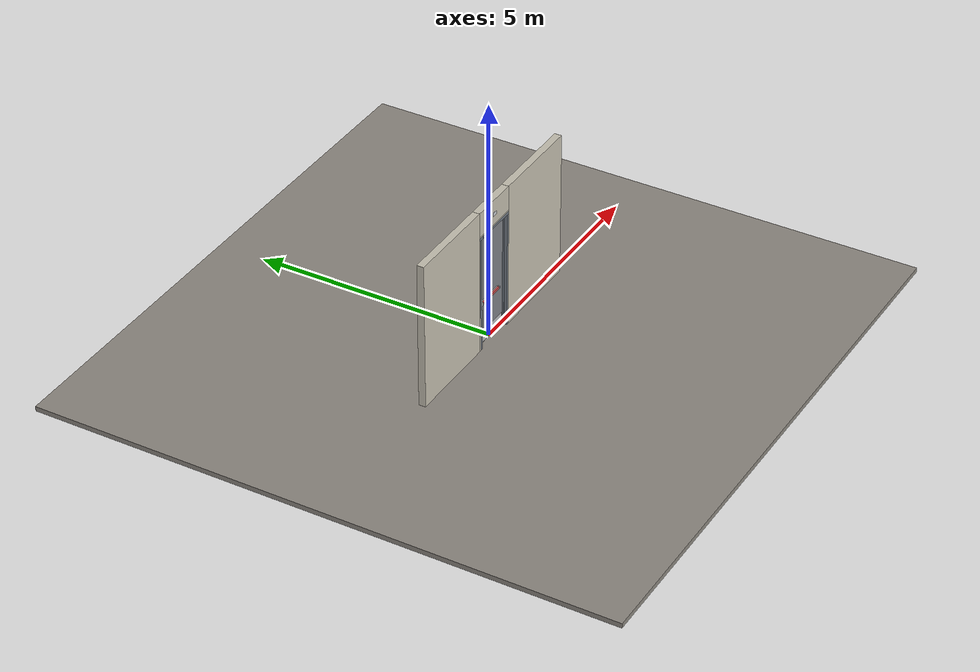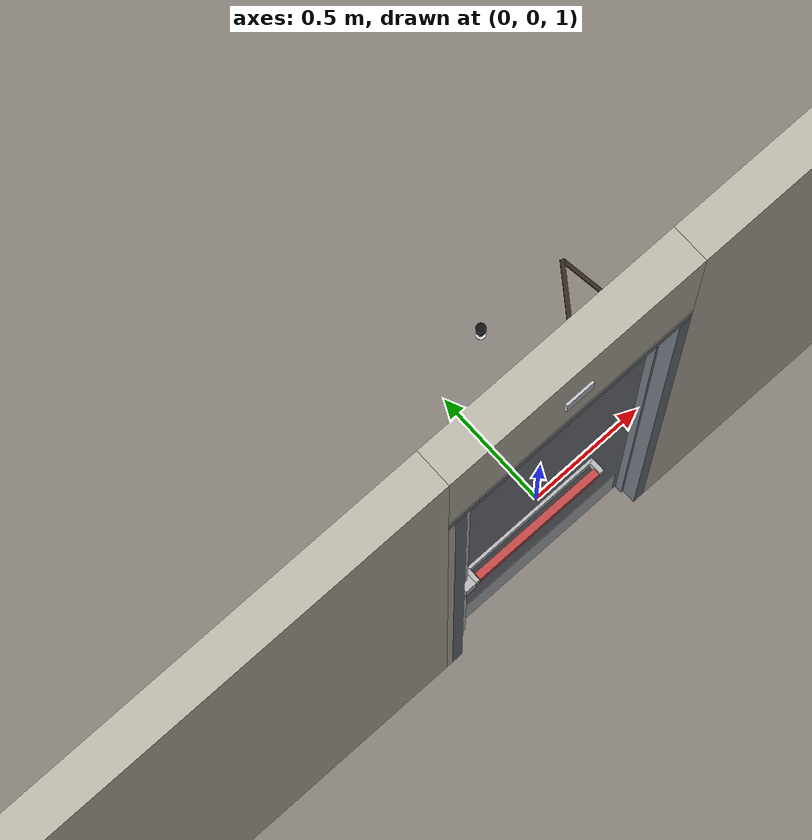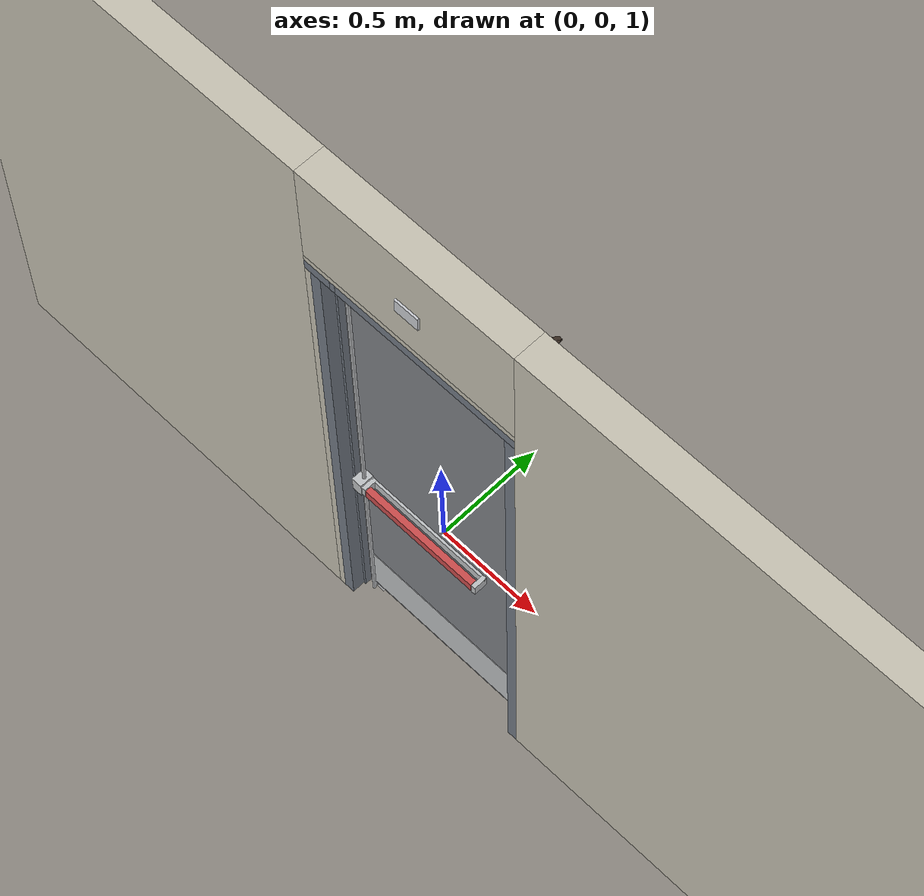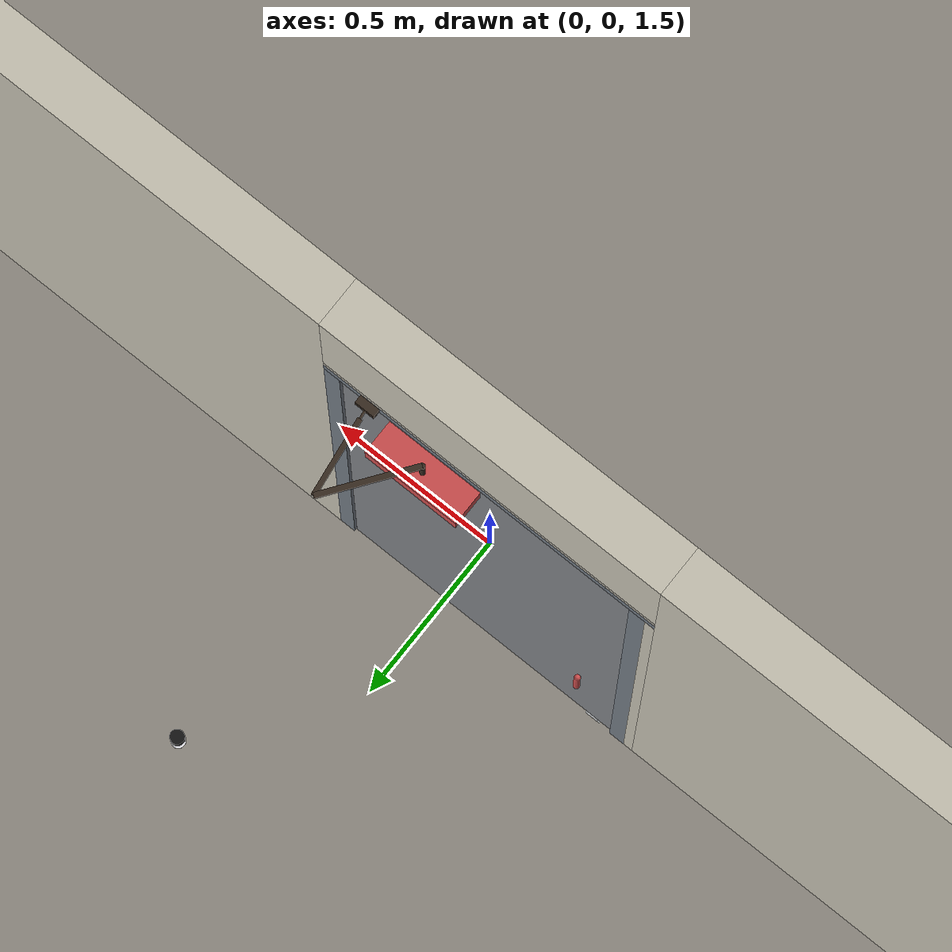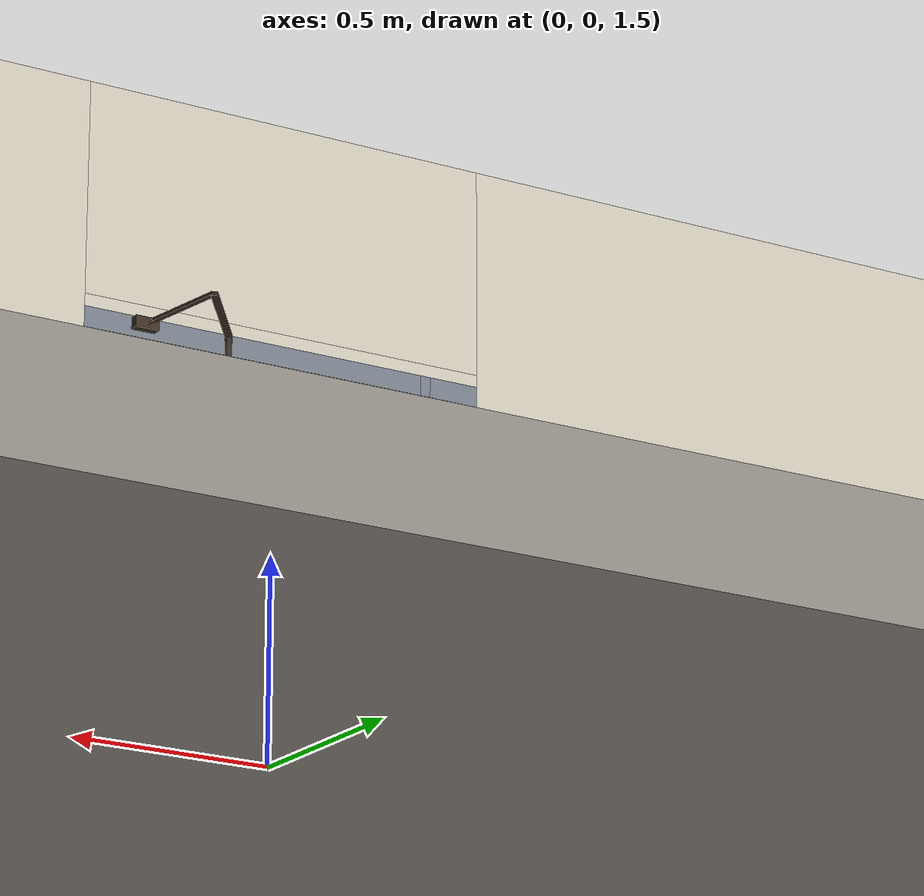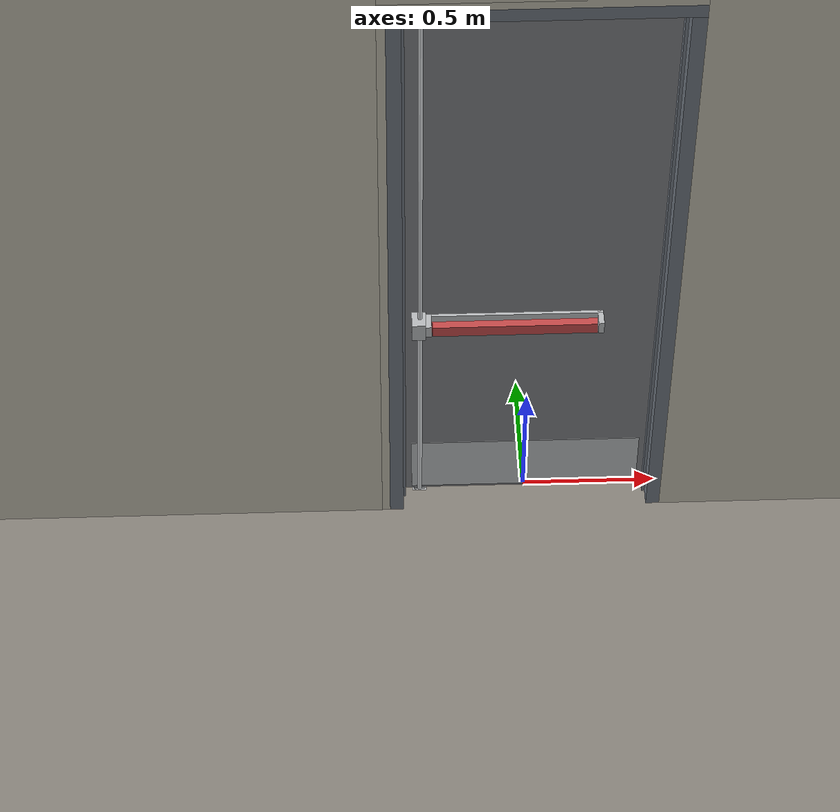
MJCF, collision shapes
<?xml version="1.0" ?>
<mujoco model="db0256_swing_single_full">
  <compiler angle="radian" meshdir="../../hardware" texturedir="../../textures" autolimits="true" inertiafromgeom="false"/>
  <option timestep="0.002" integrator="implicitfast" cone="elliptic" impratio="10" noslip_iterations="3">
    <flag multiccd="enable"/>
  </option>
  <size memory="16M"/>
  <default>
    <geom condim="4" solref="0.005 1" solimp="0.95 0.99 0.001"/>
    <joint solreflimit="0.005 1" solimplimit="0.95 0.99 0.001"/>
    <tendon solreflimit="0.005 1"/>
    <equality solref="0.002 1"/>
  </default>
  <visual>
    <headlight ambient="0.4 0.4 0.4" diffuse="0.7 0.7 0.7" specular="0.2 0.2 0.2"/>
    <quality shadowsize="4096"/>
    <map znear="0.01" zfar="60"/>
  </visual>
  <asset>
    <mesh name="closer_body_fdc4667657" file="closer_body_fdc4667657.obj"/>
    <mesh name="exit_sign_a6449bfa2c" file="exit_sign_a6449bfa2c.obj"/>
    <mesh name="hinge_e22b26c0c1" file="hinge_e22b26c0c1.obj"/>
    <mesh name="hinge_jamb_e1d088f8dc" file="hinge_jamb_e1d088f8dc.obj"/>
    <mesh name="pull_1e5d69a91a" file="pull_1e5d69a91a.obj"/>
    <mesh name="touchbar_pad_2729a067b4" file="touchbar_pad_2729a067b4.obj"/>
    <material name="mat_floor" rgba="0.55 0.53 0.5 1" specular="0.2" shininess="0.15" reflectance="0"/>
    <material name="mat_wall" rgba="0.78 0.76 0.7 1" specular="0.2" shininess="0.1" reflectance="0"/>
    <material name="mat_leaf" rgba="0.5 0.51 0.53 1" specular="0.23" shininess="0.53" reflectance="0.02"/>
    <material name="mat_hinge" rgba="0.65 0.66 0.68 1" specular="0.74" shininess="0.5" reflectance="0.36"/>
    <material name="mat_op_stainless" rgba="0.75 0.76 0.77 1" specular="0.8" shininess="0.65" reflectance="0.4"/>
    <material name="mat_bolt" rgba="0.75 0.76 0.77 1" specular="0.8" shininess="0.65" reflectance="0.4"/>
    <material name="mat_frame" rgba="0.45 0.48 0.52 1" specular="0.32" shininess="0.6" reflectance="0.08"/>
    <material name="mat_seal" rgba="0.1 0.1 0.1 1" specular="0.2" shininess="0.1" reflectance="0"/>
    <material name="mat_closer" rgba="0.22 0.17 0.13 1" specular="0.8" shininess="0.6" reflectance="0.4"/>
    <material name="mat_kick" rgba="0.75 0.76 0.77 1" specular="0.8" shininess="0.65" reflectance="0.4"/>
    <material name="mat_exit_sign" rgba="0.85 0.1 0.1 1" specular="0.2" shininess="0.6" reflectance="0"/>
    <material name="mat_sign_bracket" rgba="0.8 0.81 0.83 1" specular="0.8" shininess="0.6" reflectance="0.4"/>
    <material name="mat_bumper_stop" rgba="0.08 0.08 0.08 1" specular="0.2" shininess="0.1" reflectance="0"/>
    <material name="mat_stop_base" rgba="0.9 0.9 0.92 1" specular="0.8" shininess="0.9" reflectance="0.4"/>
    <texture name="skybox" type="skybox" builtin="gradient" rgb1="0.6 0.7 0.85" rgb2="0.9 0.92 0.95" width="256" height="256"/>
  </asset>
  <worldbody>
    <light name="sun" pos="1.5 -2.5 4" dir="-0.3 0.5 -0.8" directional="true" diffuse="0.8 0.8 0.8" specular="0.3 0.3 0.3" castshadow="true"/>
    <light name="fill" pos="-1.5 2.5 3" dir="0.3 -0.5 -0.7" directional="true" diffuse="0.35 0.35 0.4" castshadow="false"/>
    <camera name="robot_view" pos="0 -2.966312 2.043887" xyaxes="1 0 0 0 0.26963 0.962964" fovy="52"/>
    <camera name="far_view" pos="0 2.879313 2.043887" xyaxes="-1 0 0 0 -0.26963 0.962964" fovy="52"/>
    <camera name="iso" pos="-2.221337 -2.498663 2.511538" xyaxes="0.741536 -0.670913 0 0.242917 0.268487 0.932151" fovy="46"/>
    <camera name="detail_handle" pos="-0.1865 -0.718 1.245" xyaxes="0.97561 0.219512 0 -0.070934 0.315262 0.94635" fovy="38"/>
    <geom name="floor" type="box" size="6 6 0.05" pos="0 0 -0.05" material="mat_floor" group="0" contype="1" conaffinity="1" friction="0.8 0.005 0.0001" density="2400"/>
    <geom name="wall_left" type="box" size="0.97975 0.0725 1.5255" pos="-1.52025 -0.0435 1.5255" material="mat_wall" group="0" contype="1" conaffinity="1" friction="0.6 0.005 0.0001" density="800"/>
    <geom name="wall_right" type="box" size="0.99475 0.0725 1.5255" pos="1.50525 -0.0435 1.5255" material="mat_wall" group="0" contype="1" conaffinity="1" friction="0.6 0.005 0.0001" density="800"/>
    <geom name="wall_header" type="box" size="0.5255 0.0725 0.26" pos="-0.015 -0.0435 2.791" material="mat_wall" group="0" contype="1" conaffinity="1" friction="0.6 0.005 0.0001" density="800"/>
    <geom name="hinge_0_jamb" type="mesh" mesh="hinge_jamb_e1d088f8dc" pos="0.4575 0.029 0.266" quat="0 0 0 1" material="mat_hinge" group="1" contype="0" conaffinity="0" density="7850"/>
    <geom name="hinge_1_jamb" type="mesh" mesh="hinge_jamb_e1d088f8dc" pos="0.4575 0.029 0.933" quat="0 0 0 1" material="mat_hinge" group="1" contype="0" conaffinity="0" density="7850"/>
    <geom name="hinge_2_jamb" type="mesh" mesh="hinge_jamb_e1d088f8dc" pos="0.4575 0.029 1.6" quat="0 0 0 1" material="mat_hinge" group="1" contype="0" conaffinity="0" density="7850"/>
    <geom name="hinge_3_jamb" type="mesh" mesh="hinge_jamb_e1d088f8dc" pos="0.4575 0.029 2.267" quat="0 0 0 1" material="mat_hinge" group="1" contype="0" conaffinity="0" density="7850"/>
    <geom name="leaf_bottom_strike_plate" type="box" size="0.0255 0.0255 0.00075" pos="-0.3965 0 0.00075" material="mat_bolt" group="0" contype="1" conaffinity="1" friction="0.6 0.005 0.0001" density="7850"/>
    <geom name="leaf_bottom_strike_p" type="box" size="0.0215 0.004 0.00575" pos="-0.3965 0.0145 0.00725" material="mat_bolt" group="0" contype="1" conaffinity="1" friction="0.6 0.005 0.0001" density="7850"/>
    <geom name="leaf_bottom_strike_n" type="box" size="0.0215 0.004 0.00575" pos="-0.3965 -0.0145 0.00725" material="mat_bolt" group="0" contype="1" conaffinity="1" friction="0.6 0.005 0.0001" density="7850"/>
    <geom name="leaf_bottom_strike_e" type="box" size="0.004 0.0215 0.00575" pos="-0.411 0 0.00725" material="mat_bolt" group="0" contype="1" conaffinity="1" friction="0.6 0.005 0.0001" density="7850"/>
    <geom name="jamb_hinge" type="box" size="0.025 0.0725 1.2255" pos="0.4855 -0.0435 1.2255" material="mat_frame" group="0" contype="1" conaffinity="1" friction="0.6 0.005 0.0001" density="300"/>
    <geom name="jamb_strike" type="box" size="0.025 0.0725 1.2255" pos="-0.4855 -0.0435 1.2255" material="mat_frame" group="0" contype="1" conaffinity="1" friction="0.6 0.005 0.0001" density="300"/>
    <geom name="stud_strike" type="box" size="0.015 0.0725 1.2255" pos="-0.5255 -0.0435 1.2255" material="mat_wall" group="0" contype="1" conaffinity="1" friction="0.6 0.005 0.0001" density="500"/>
    <geom name="jamb_head_pwall_-396_n" type="box" size="0.0135 0.0525 0.025" pos="-0.3965 -0.0635 2.476" material="mat_frame" group="0" contype="1" conaffinity="1" friction="0.6 0.005 0.0001" density="300"/>
    <geom name="jamb_head_pwall_-396_p" type="box" size="0.0135 0.009 0.025" pos="-0.3965 0.02 2.476" material="mat_frame" group="0" contype="1" conaffinity="1" friction="0.6 0.005 0.0001" density="300"/>
    <geom name="jamb_head_pback_-396" type="box" size="0.0135 0.011 0.0135" pos="-0.3965 0 2.4875" material="mat_frame" group="0" contype="1" conaffinity="1" friction="0.6 0.005 0.0001" density="300"/>
    <geom name="jamb_head_0" type="box" size="0.06525 0.0725 0.025" pos="-0.47525 -0.0435 2.476" material="mat_frame" group="0" contype="1" conaffinity="1" friction="0.6 0.005 0.0001" density="300"/>
    <geom name="jamb_head_1" type="box" size="0.44675 0.0725 0.025" pos="0.06375 -0.0435 2.476" material="mat_frame" group="0" contype="1" conaffinity="1" friction="0.6 0.005 0.0001" density="300"/>
    <geom name="head_stud" type="box" size="0.5255 0.0725 0.015" pos="-0.015 -0.0435 2.516" material="mat_wall" group="0" contype="1" conaffinity="1" friction="0.6 0.005 0.0001" density="500"/>
    <geom name="stop_hinge" type="box" size="0.0055 0.016 1.2255" pos="0.455 -0.0385 1.2255" material="mat_frame" group="0" contype="1" conaffinity="1" friction="0.6 0.005 0.0001" density="300"/>
    <geom name="stop_strike" type="box" size="0.0055 0.016 1.2255" pos="-0.455 -0.0385 1.2255" material="mat_frame" group="0" contype="1" conaffinity="1" friction="0.6 0.005 0.0001" density="300"/>
    <geom name="stop_head" type="box" size="0.4605 0.016 0.0055" pos="0 -0.0385 2.4455" material="mat_frame" group="0" contype="1" conaffinity="1" friction="0.6 0.005 0.0001" density="300"/>
    <geom name="seal_hinge" type="box" size="0.004 0.004 1.2255" pos="0.4575 -0.026 1.2255" material="mat_seal" group="1" contype="0" conaffinity="0" density="1100"/>
    <geom name="seal_strike" type="box" size="0.004 0.004 1.2255" pos="-0.4575 -0.026 1.2255" material="mat_seal" group="1" contype="0" conaffinity="0" density="1100"/>
    <geom name="seal_head" type="box" size="0.4405 0.004 0.008" pos="0 -0.026 2.439" material="mat_seal" group="1" contype="0" conaffinity="0" density="1100"/>
    <geom name="closer_bracket" type="box" size="0.03 0.012 0.014" pos="0.3605 0.041 2.481" material="mat_closer" group="1" contype="0" conaffinity="0" density="2700"/>
    <geom name="exit_sign" type="mesh" mesh="exit_sign_a6449bfa2c" pos="0 -0.15 2.751" material="mat_exit_sign" group="2" contype="0" conaffinity="0" density="500"/>
    <geom name="exit_sign_bracket" type="box" size="0.05775 0.005 0.035" pos="0 -0.1205 2.751" material="mat_sign_bracket" group="2" contype="0" conaffinity="0" density="7850"/>
    <geom name="door_stop_base" type="cylinder" size="0.022 0.003" pos="0.4735 0.8059 0.003" material="mat_stop_base" group="0" contype="1" conaffinity="1" friction="0.6 0.005 0.0001" density="7850"/>
    <geom name="door_stop_post" type="cylinder" size="0.012 0.025" pos="0.4735 0.8059 0.031" material="mat_stop_base" group="0" contype="1" conaffinity="1" friction="0.6 0.005 0.0001" density="7850"/>
    <geom name="door_stop_bumper" type="cylinder" size="0.022 0.02" pos="0.4735 0.8059 0.076" material="mat_bumper_stop" group="0" contype="1" conaffinity="1" friction="0.6 0.005 0.0001" density="1100"/>
    <site name="approach_point" pos="0 -1.5 0" quat="1 0 0 0" size="0.05" rgba="0.2 0.9 0.2 0.5" group="4"/>
    <site name="goal_point" pos="0 1.5 0" quat="1 0 0 0" size="0.05" rgba="0.2 0.9 0.2 0.5" group="4"/>
    <site name="door_plane_center" pos="0 0 1.2255" quat="1 0 0 0" size="0.02" rgba="0.2 0.9 0.2 0.5" group="4"/>
    <body name="leaf" pos="0.4605 0 0">
      <inertial pos="-0.449915 0.009703 1.395469" mass="65.344548" quat="0.518399 -0.511832 -0.498811 -0.469551" diaginertia="4.439343417 40.539708882 44.854346929"/>
      <joint name="leaf_hinge" type="hinge" axis="0 0 -1" pos="-0.003 0.029 0" limited="true" range="0 1.570796" solreflimit="0.02 1" damping="12.307281" frictionloss="3.327301" stiffness="15.8391" springref="-1.756413" armature="0.02"/>
      <geom name="leaf_slab" type="box" size="0.457 0.022 1.2155" pos="-0.46 0 1.2315" material="mat_leaf" group="0" contype="1" conaffinity="1" friction="0.4 0.005 0.0001" density="1"/>
      <geom name="hinge_0" type="mesh" mesh="hinge_e22b26c0c1" pos="-0.003 0.029 0.266" quat="0 0 0 1" material="mat_hinge" group="1" contype="0" conaffinity="0" density="7850"/>
      <geom name="hinge_1" type="mesh" mesh="hinge_e22b26c0c1" pos="-0.003 0.029 0.933" quat="0 0 0 1" material="mat_hinge" group="1" contype="0" conaffinity="0" density="7850"/>
      <geom name="hinge_2" type="mesh" mesh="hinge_e22b26c0c1" pos="-0.003 0.029 1.6" quat="0 0 0 1" material="mat_hinge" group="1" contype="0" conaffinity="0" density="7850"/>
      <geom name="hinge_3" type="mesh" mesh="hinge_e22b26c0c1" pos="-0.003 0.029 2.267" quat="0 0 0 1" material="mat_hinge" group="1" contype="0" conaffinity="0" density="7850"/>
      <geom name="leaf_exit_device_rail" type="box" size="0.31705 0.006 0.025" pos="-0.51995 -0.028 0.965" material="mat_op_stainless" group="0" contype="1" conaffinity="1" friction="0.6 0.005 0.0001" density="3000"/>
      <geom name="leaf_exit_device_rail_end_n" type="box" size="0.01 0.0325 0.025" pos="-0.827 -0.0545 0.965" material="mat_op_stainless" group="0" contype="1" conaffinity="1" friction="0.6 0.005 0.0001" density="3000"/>
      <geom name="leaf_exit_device_rail_end_p" type="box" size="0.01 0.0325 0.025" pos="-0.2129 -0.0545 0.965" material="mat_op_stainless" group="0" contype="1" conaffinity="1" friction="0.6 0.005 0.0001" density="3000"/>
      <geom name="leaf_exit_device_case" type="box" size="0.025 0.034125 0.0375" pos="-0.862 -0.056125 0.965" material="mat_op_stainless" group="0" contype="1" conaffinity="1" friction="0.6 0.005 0.0001" density="3000"/>
      <geom name="leaf_exit_device_rod_top" type="cylinder" size="0.008 0.70725" pos="-0.857 -0.052 1.70975" material="mat_op_stainless" group="1" contype="0" conaffinity="0" density="7850"/>
      <geom name="leaf_exit_device_rod_bot" type="cylinder" size="0.008 0.44075" pos="-0.857 -0.052 0.48675" material="mat_op_stainless" group="1" contype="0" conaffinity="0" density="7850"/>
      <geom name="leaf_far_pull_p" type="mesh" mesh="pull_1e5d69a91a" pos="-0.827 0.022 0.965" quat="0 0 0.707107 0.707107" material="mat_op_stainless" group="1" contype="0" conaffinity="0" density="3000"/>
      <geom name="leaf_far_pull_col_p" type="capsule" size="0.0095 0.08" pos="-0.827 0.082 0.965" material="mat_op_stainless" group="3" contype="1" conaffinity="1" rgba="0.8 0.3 0.3 0.25" friction="0.7 0.01 0.0001" density="3000"/>
      <geom name="closer_body" type="mesh" mesh="closer_body_fdc4667657" pos="-0.3 0.022 2.351" quat="0 0 0.707107 0.707107" material="mat_closer" group="1" contype="0" conaffinity="0" density="2000"/>
      <geom name="closer_body_col" type="box" size="0.145 0.05 0.035" pos="-0.3 0.072 2.351" material="mat_closer" group="3" contype="1" conaffinity="1" rgba="0.8 0.3 0.3 0.25" friction="0.6 0.005 0.0001" density="2000"/>
      <geom name="closer_pinion_shaft" type="cylinder" size="0.008 0.065" pos="-0.3 0.072 2.416" material="mat_closer" group="1" contype="0" conaffinity="0" density="2700"/>
      <geom name="kick_plate_n" type="box" size="0.427 0.0008 0.125" pos="-0.46 -0.0228 0.151" material="mat_kick" group="2" contype="0" conaffinity="0" density="7900"/>
      <site name="leaf_far_pull_grip_p" pos="-0.827 0.082 0.965" quat="1 0 0 0" size="0.012" rgba="0.2 0.9 0.2 0.5" group="4"/>
      <site name="leaf_edge_mid" pos="-0.917 0 1.2155" quat="1 0 0 0" size="0.02" rgba="0.2 0.9 0.2 0.5" group="4"/>
      <body name="leaf_exit_device" pos="-0.51995 -0.022 0.965">
        <inertial pos="0 -0.05 0" mass="4.76361" quat="0 0 -0.707107 0.707107" diaginertia="0.00116113 0.137653089 0.138099678"/>
        <joint name="leaf_exit_device_slide" type="slide" axis="0 1 0" limited="true" range="0 0.016" damping="165.880125" frictionloss="0.5" stiffness="1400" springref="-0.015714" armature="0.15"/>
        <geom name="leaf_exit_device_pad" type="mesh" mesh="touchbar_pad_2729a067b4" pos="0 0 0" quat="0 0 -0.707107 0.707107" material="mat_op_stainless" group="1" contype="0" conaffinity="0" density="3000"/>
        <geom name="leaf_exit_device_pad_col" type="box" size="0.29405 0.015 0.0225" pos="0 -0.05 0" material="mat_op_stainless" group="3" contype="1" conaffinity="1" rgba="0.8 0.3 0.3 0.25" friction="0.8 0.01 0.0001" density="3000"/>
        <site name="leaf_exit_device_push" pos="0 -0.065 0" quat="1 0 0 0" size="0.015" rgba="0.2 0.9 0.2 0.5" group="4"/>
      </body>
      <body name="leaf_top_latch" pos="-0.857 0 2.447">
        <inertial pos="0 0 -0.0155" mass="0.151026" quat="0.707107 0 0.707107 0" diaginertia="0.00000654 0.000053442 0.000053442"/>
        <joint name="leaf_top_latch_slide" type="slide" axis="0 0 -1" limited="true" range="0 0.019" damping="2" frictionloss="0.3" stiffness="800" springref="-0.01" armature="0.1"/>
        <geom name="leaf_top_latch_capsule" type="capsule" size="0.0095 0.025" pos="0 0 -0.0155" material="mat_bolt" group="0" contype="1" conaffinity="1" friction="0.2 0.005 0.0001" density="8500"/>
      </body>
      <body name="leaf_bottom_latch" pos="-0.857 0 0.03">
        <inertial pos="0 0 0.012" mass="0.167896" quat="0.707107 0 0.707107 0" diaginertia="0.000007301 0.000072388 0.000072388"/>
        <joint name="leaf_bottom_latch_slide" type="slide" axis="0 0 1" limited="true" range="0 0.026" damping="2" frictionloss="0.3" stiffness="800" springref="-0.01" armature="0.1"/>
        <geom name="leaf_bottom_latch_capsule" type="capsule" size="0.0095 0.0285" pos="0 0 0.012" material="mat_bolt" group="0" contype="1" conaffinity="1" friction="0.2 0.005 0.0001" density="8500"/>
      </body>
      <body name="closer_arm_main" pos="-0.3 0.072 2.481" quat="0.890947 0 0 0.454107">
        <inertial pos="0.14 0 0" mass="0.12096" quat="1 0 0 0" diaginertia="0.000003588 0.00079128 0.000792852"/>
        <joint name="closer_pinion" type="hinge" axis="0 0 1" limited="false" damping="0.01" armature="0.002"/>
        <geom name="closer_arm_main_geom" type="box" size="0.14 0.008 0.005" pos="0.14 0 0" material="mat_closer" group="1" contype="0" conaffinity="0" density="2700"/>
        <body name="closer_arm_fore" pos="0.28 0 0" quat="0.373215 0 0 -0.927745">
          <inertial pos="0.128088 0 0" mass="0.076531" quat="1 0 0 0" diaginertia="0.000001771 0.000437665 0.000438201"/>
          <joint name="closer_elbow" type="hinge" axis="0 0 1" limited="false" damping="0.01" armature="0.002"/>
          <geom name="closer_arm_fore_geom" type="box" size="0.1125 0.007 0.004" pos="0.1125 0 0" material="mat_closer" group="1" contype="0" conaffinity="0" density="2700"/>
          <geom name="closer_fore_neck" type="box" size="0.0175 0.003 0.003" pos="0.2425 0 0" material="mat_closer" group="1" contype="0" conaffinity="0" density="2700"/>
          <geom name="closer_fore_pivot" type="cylinder" size="0.005 0.012" pos="0.26 0 0" material="mat_closer" group="1" contype="0" conaffinity="0" density="2700"/>
        </body>
      </body>
    </body>
  </worldbody>
  <tendon>
    <fixed name="leaf_top_latch_coupling" limited="true" range="0 10">
      <joint joint="leaf_top_latch_slide" coef="1"/>
      <joint joint="leaf_exit_device_slide" coef="-1.142857"/>
    </fixed>
    <fixed name="leaf_bottom_latch_coupling" limited="true" range="0 10">
      <joint joint="leaf_bottom_latch_slide" coef="1"/>
      <joint joint="leaf_exit_device_slide" coef="-1.56391"/>
    </fixed>
  </tendon>
  <equality>
    <connect name="closer_arm_connect" body1="closer_arm_fore" body2="world" anchor="0.26 0 0" active="true"/>
  </equality>
  <contact>
    <exclude body1="closer_arm_main" body2="leaf"/>
    <exclude body1="closer_arm_fore" body2="leaf"/>
    <exclude body1="closer_arm_main" body2="closer_arm_fore"/>
  </contact>
  <sensor>
    <jointpos name="leaf_hinge_pos" joint="leaf_hinge"/>
    <jointvel name="leaf_hinge_vel" joint="leaf_hinge"/>
    <jointpos name="leaf_exit_device_slide_pos" joint="leaf_exit_device_slide"/>
    <jointvel name="leaf_exit_device_slide_vel" joint="leaf_exit_device_slide"/>
    <jointpos name="leaf_top_latch_slide_pos" joint="leaf_top_latch_slide"/>
    <jointvel name="leaf_top_latch_slide_vel" joint="leaf_top_latch_slide"/>
    <jointpos name="leaf_bottom_latch_slide_pos" joint="leaf_bottom_latch_slide"/>
    <jointvel name="leaf_bottom_latch_slide_vel" joint="leaf_bottom_latch_slide"/>
  </sensor>
</mujoco>
